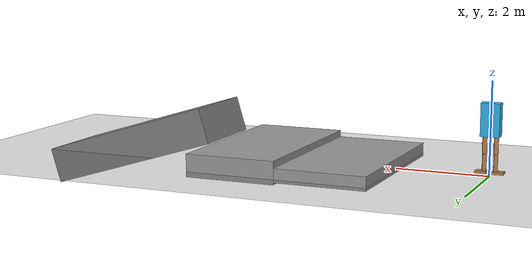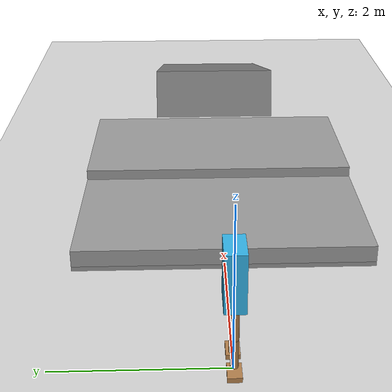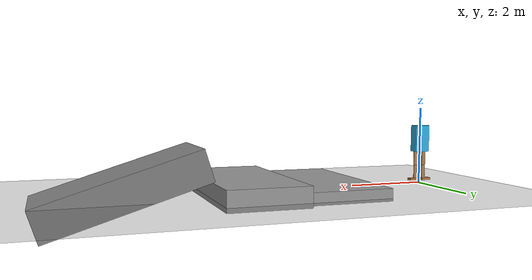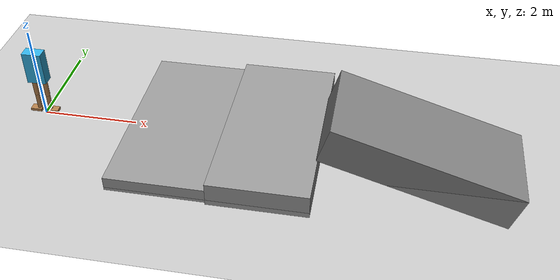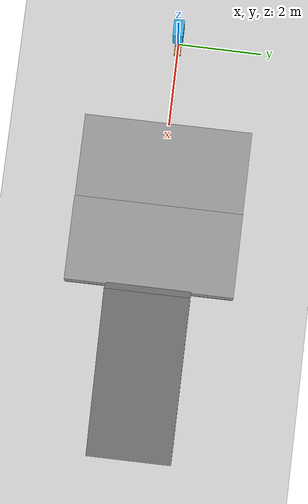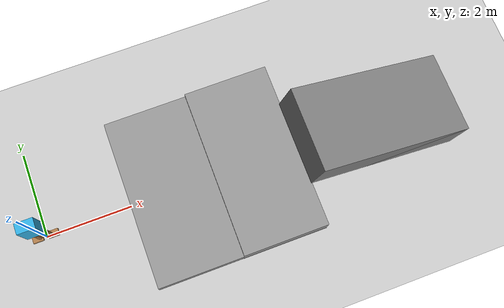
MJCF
<mujoco model="adaptive_terrain_explorer">
  <compiler angle="radian" inertiafromgeom="true"/>
  <option timestep="0.002" gravity="0 0 -9.81" integrator="RK4"/>

  <default>
    <joint armature="0.02" damping="2" limited="true"/>
    <geom rgba="0.7 0.5 0.3 1" solref="0.02 1"/>
  </default>

  <worldbody>
    <!-- Ground with terrain -->
    <geom name="floor" type="plane" size="20 20 0.1" pos="0 0 0" rgba="0.4 0.4 0.4 1"/>

    <!-- Obstacles for challenge -->
    <geom name="step1" type="box" size="1 2 0.15" pos="3 0 0.075" rgba="0.6 0.6 0.6 1"/>
    <geom name="step2" type="box" size="1 2 0.25" pos="5 0 0.125" rgba="0.6 0.6 0.6 1"/>
    <geom name="hill" type="box" size="2 1 0.4" pos="8 0 0.2" euler="0 0.3 0" rgba="0.5 0.5 0.5 1"/>

    <!-- Robot -->
    <body name="torso" pos="0 0 1.2">
      <freejoint/>
      <geom name="torso" type="box" size="0.2 0.12 0.35" rgba="0.2 0.7 0.9 1" mass="5"/>

      <!-- Left Leg -->
      <body name="l_thigh" pos="0.12 0 -0.35">
        <joint name="l_hip" type="hinge" axis="0 1 0" range="-1.2 1.2"/>
        <geom name="l_thigh" type="capsule" fromto="0 0 0 0 0 -0.35" size="0.05" mass="1.5"/>

        <body name="l_shin" pos="0 0 -0.35">
          <joint name="l_knee" type="hinge" axis="0 1 0" range="-2.0 0.1"/>
          <geom name="l_shin" type="capsule" fromto="0 0 0 0 0 -0.4" size="0.045" mass="1.2"/>

          <body name="l_foot" pos="0 0 -0.4">
            <joint name="l_ankle" type="hinge" axis="0 1 0" range="-0.7 0.7"/>
            <geom name="l_foot" type="box" size="0.12 0.08 0.03" pos="0.06 0 0" mass="0.8"/>
          </body>
        </body>
      </body>

      <!-- Right Leg -->
      <body name="r_thigh" pos="-0.12 0 -0.35">
        <joint name="r_hip" type="hinge" axis="0 1 0" range="-1.2 1.2"/>
        <geom name="r_thigh" type="capsule" fromto="0 0 0 0 0 -0.35" size="0.05" mass="1.5"/>

        <body name="r_shin" pos="0 0 -0.35">
          <joint name="r_knee" type="hinge" axis="0 1 0" range="-2.0 0.1"/>
          <geom name="r_shin" type="capsule" fromto="0 0 0 0 0 -0.4" size="0.045" mass="1.2"/>

          <body name="r_foot" pos="0 0 -0.4">
            <joint name="r_ankle" type="hinge" axis="0 1 0" range="-0.7 0.7"/>
            <geom name="r_foot" type="box" size="0.12 0.08 0.03" pos="-0.06 0 0" mass="0.8"/>
          </body>
        </body>
      </body>
    </body>
  </worldbody>

  <actuator>
    <position joint="l_hip" kp="400" name="l_hip_act"/>
    <position joint="l_knee" kp="300" name="l_knee_act"/>
    <position joint="l_ankle" kp="200" name="l_ankle_act"/>
    <position joint="r_hip" kp="400" name="r_hip_act"/>
    <position joint="r_knee" kp="300" name="r_knee_act"/>
    <position joint="r_ankle" kp="200" name="r_ankle_act"/>
  </actuator>
</mujoco>
